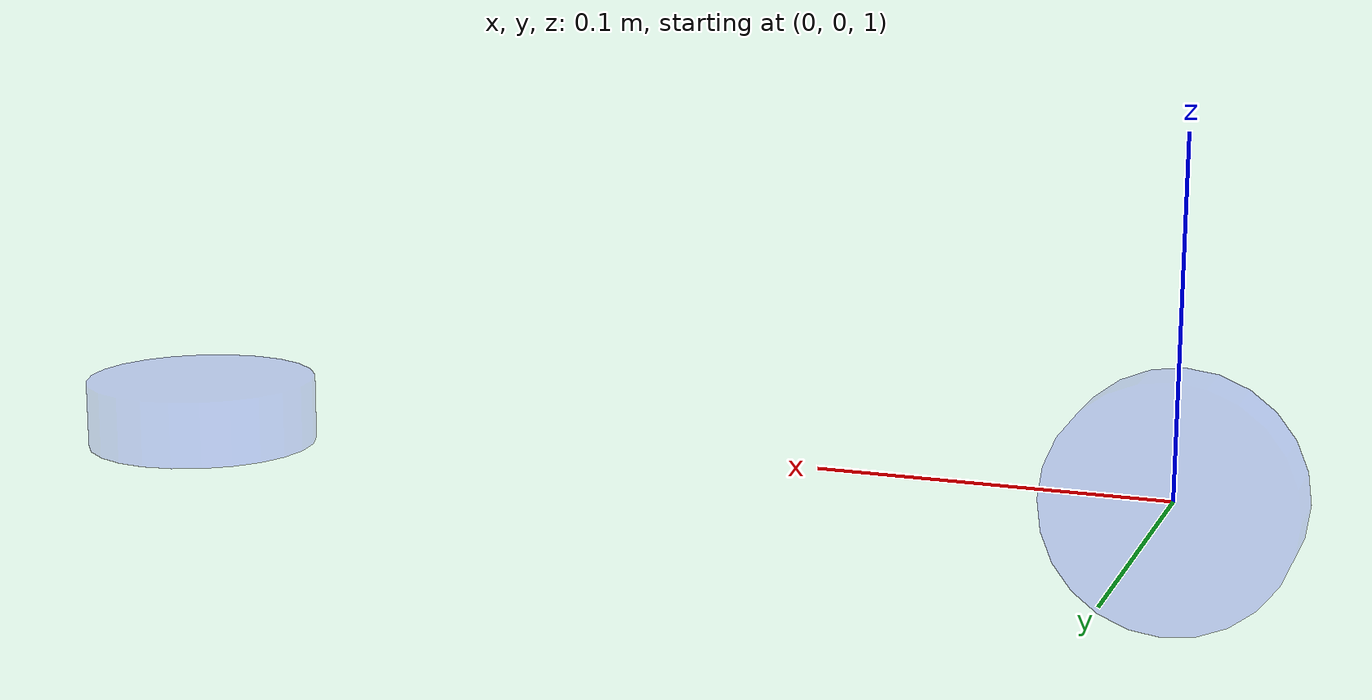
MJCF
<mujoco model="rolling_ball">
  <extension>
    <plugin plugin="mujoco.magnet"/>
  </extension>

  <statistic center="0 0 0.5" extent="0.8"/>
  <option gravity="0 0 0"/>

  <visual>
    <headlight diffuse="0.6 0.6 0.6" ambient="0.3 0.3 0.3" specular="0 0 0"/>
    <rgba haze="0.15 0.25 0.35 1"/>
    <global azimuth="120" elevation="-20"/>
  </visual>

  <asset>
    <texture type="skybox" builtin="gradient" rgb1="0.3 0.5 0.7" rgb2="0 0 0" width="512" height="3072"/>
    <texture type="2d" name="groundplane" builtin="checker" mark="edge" rgb1="0.2 0.3 0.4" rgb2="0.1 0.2 0.3" markrgb="0.8 0.8 0.8" width="300" height="300"/>
    <material name="groundplane" texture="groundplane" texuniform="true" texrepeat="5 5" reflectance="0.2"/>
  </asset>

  <worldbody>
    <light pos="0 0 1.5" dir="0 0 -1" directional="true"/>
    <geom name="floor" size="0 0 0.05" type="plane" material="groundplane"/>

    <body name="disk" pos="0 0 1" quat="1 1 0 0">
      <plugin plugin="mujoco.magnet">
        <config key="B" value="0 0 0"/>
        <config key="dB" value="0 0 0.01"/>
        <config key="type" value="induced"/>
        <config key="mu_r" value="1000"/>
        <config key="V" value="7.7e-5"/>
        <config key="N" value="0.2 0.2 0.6"/>
      </plugin>
      <geom type="cylinder" size="0.035 0.01" rgba="0 0 1 0.2"/>
      <joint type="free" damping="0.05"/>
    </body>

    <body name="disk2" pos="0.3 0 1" quat="1 0 0 0">
      <plugin plugin="mujoco.magnet">
        <config key="B" value="0 0 0"/>
        <config key="dB" value="0 0 0.01"/>
        <config key="type" value="induced"/>
        <config key="mu_r" value="1000"/>
        <config key="V" value="7.7e-5"/>
        <config key="N" value="0.2 0.2 0.6"/>
      </plugin>
      <geom type="cylinder" size="0.035 0.01" rgba="0 0 1 0.2"/>
      <joint type="free" damping="0.05"/>
    </body>
  </worldbody>
</mujoco>
